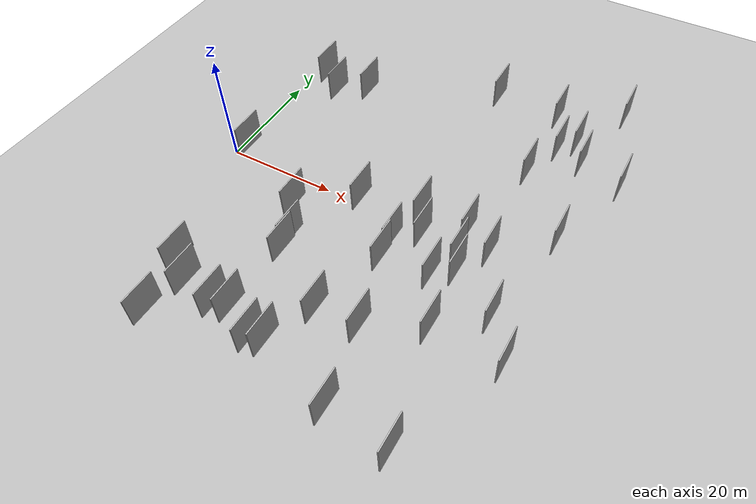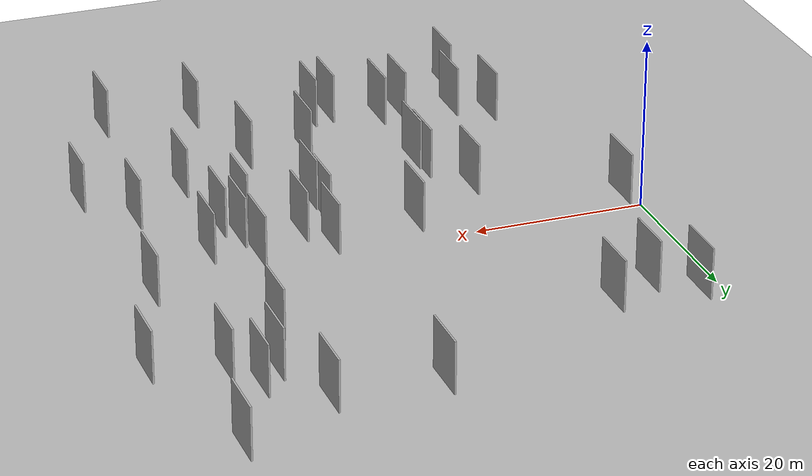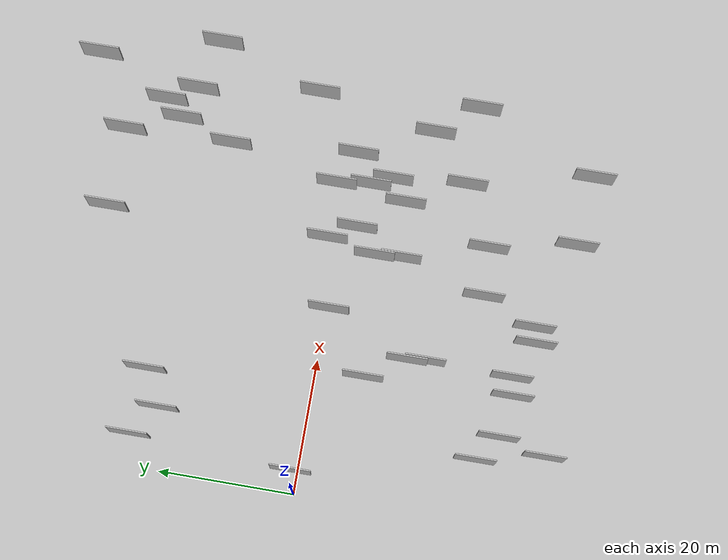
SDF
<?xml version="1.0" encoding="utf-8"?>

<sdf version="1.6">

   <world name="default">

      <gui fullscreen="0">

         <camera name="user_camera">

            <pose>-15 0 4.57585 0 0 0</pose>

            <view_controller>orbit</view_controller>

         </camera>

      </gui>

      <scene>

         <sky>

           <clouds>

             <speed>12</speed>

           </clouds>

         </sky>

         <ambient>0.4 0.4 0.4 1</ambient>

         <background>0.7 0.7 0.7 1</background>

         <shadows>1</shadows>

      </scene>

      <gravity>0 0 -9.8066</gravity>

      <magnetic_field>6e-06 2.3e-05 -4.2e-05</magnetic_field>

      <physics default="0" name="default_physics" type="ode">

         <ode>

            <solver>

               <type>quick</type>

               <iters>10</iters>

               <sor>1.0</sor>

               <use_dynamic_moi_rescaling>0</use_dynamic_moi_rescaling>

            </solver>

            <constraints>

               <cfm>0</cfm>

               <erp>0.2</erp>

               <contact_max_correcting_vel>100</contact_max_correcting_vel>

               <contact_surface_layer>0.001</contact_surface_layer>

            </constraints>

         </ode>

         <max_step_size>0.004</max_step_size>

         <real_time_factor>1</real_time_factor>

         <real_time_update_rate>250</real_time_update_rate>

      </physics>

      <light name="sun" type="directional">

         <cast_shadows>1</cast_shadows>

         <pose>0 0 10 0 0 0</pose>

         <diffuse>0.8 0.8 0.8 1</diffuse>

         <specular>0.2 0.2 0.2 1</specular>

         <attenuation>

            <range>1000</range>

            <constant>0.9</constant>

            <linear>0.01</linear>

            <quadratic>0.001</quadratic>

         </attenuation>

         <direction>-0.5 0.1 -0.9</direction>

      </light>

      <include>

         <name>ground_plane_1</name>

         <uri>model://HANNAS_ground_plane</uri>

         <pose>0 0 0  0 0 0</pose>

      </include>

      <include>

         <name>ground_plane_2</name>

         <uri>model://HANNAS_ground_plane</uri>

         <pose>100 0 0  0 0 0</pose>

      </include>

      <model name="HANNAS_wall_1">

         <static>1</static>

         <pose frame="">51.9781 25.9054 2.5 0.000000 0.000000 1.570796</pose>

         <link name="link">

            <pose frame="">0 0 3.00 0 0 0</pose>

            <collision name="collision">

               <geometry>

                  <box>

                     <size>6.00 0.2 6.00</size>

                  </box>

               </geometry>

               <max_contacts>10</max_contacts>

               <surface>

                  <contact>

                     <ode/>

                  </contact>

                  <bounce/>

                  <friction>

                     <torsional>

                        <ode/>

                     </torsional>

                     <ode/>

                  </friction>

               </surface>

            </collision>

            <visual name="visual">

               <cast_shadows>0</cast_shadows>

               <geometry>

                  <box>

                     <size>6.00 0.2 6.00</size>

                  </box>

               </geometry>

               <material>

                  <script>

                     <uri>model://HANNAS_wall/materials/scripts</uri>

                     <uri>model://HANNAS_wall/materials/textures</uri>

                     <name>vrc/HANNAS_wall</name>

                  </script>

               </material>

            </visual>

            <self_collide>0</self_collide>

            <enable_wind>0</enable_wind>

            <kinematic>0</kinematic>

         </link>

      </model>

      <model name="HANNAS_wall_2">

         <static>1</static>

         <pose frame="">56.0913 -11.6065 2.5 0.000000 0.000000 1.570796</pose>

         <link name="link">

            <pose frame="">0 0 3.00 0 0 0</pose>

            <collision name="collision">

               <geometry>

                  <box>

                     <size>6.00 0.2 6.00</size>

                  </box>

               </geometry>

               <max_contacts>10</max_contacts>

               <surface>

                  <contact>

                     <ode/>

                  </contact>

                  <bounce/>

                  <friction>

                     <torsional>

                        <ode/>

                     </torsional>

                     <ode/>

                  </friction>

               </surface>

            </collision>

            <visual name="visual">

               <cast_shadows>0</cast_shadows>

               <geometry>

                  <box>

                     <size>6.00 0.2 6.00</size>

                  </box>

               </geometry>

               <material>

                  <script>

                     <uri>model://HANNAS_wall/materials/scripts</uri>

                     <uri>model://HANNAS_wall/materials/textures</uri>

                     <name>vrc/HANNAS_wall</name>

                  </script>

               </material>

            </visual>

            <self_collide>0</self_collide>

            <enable_wind>0</enable_wind>

            <kinematic>0</kinematic>

         </link>

      </model>

      <model name="HANNAS_wall_3">

         <static>1</static>

         <pose frame="">12.7537 -27.6834 2.5 0.000000 0.000000 1.570796</pose>

         <link name="link">

            <pose frame="">0 0 3.00 0 0 0</pose>

            <collision name="collision">

               <geometry>

                  <box>

                     <size>6.00 0.2 6.00</size>

                  </box>

               </geometry>

               <max_contacts>10</max_contacts>

               <surface>

                  <contact>

                     <ode/>

                  </contact>

                  <bounce/>

                  <friction>

                     <torsional>

                        <ode/>

                     </torsional>

                     <ode/>

                  </friction>

               </surface>

            </collision>

            <visual name="visual">

               <cast_shadows>0</cast_shadows>

               <geometry>

                  <box>

                     <size>6.00 0.2 6.00</size>

                  </box>

               </geometry>

               <material>

                  <script>

                     <uri>model://HANNAS_wall/materials/scripts</uri>

                     <uri>model://HANNAS_wall/materials/textures</uri>

                     <name>vrc/HANNAS_wall</name>

                  </script>

               </material>

            </visual>

            <self_collide>0</self_collide>

            <enable_wind>0</enable_wind>

            <kinematic>0</kinematic>

         </link>

      </model>

      <model name="HANNAS_wall_4">

         <static>1</static>

         <pose frame="">27.2120 -0.4861 2.5 0.000000 0.000000 1.570796</pose>

         <link name="link">

            <pose frame="">0 0 3.00 0 0 0</pose>

            <collision name="collision">

               <geometry>

                  <box>

                     <size>6.00 0.2 6.00</size>

                  </box>

               </geometry>

               <max_contacts>10</max_contacts>

               <surface>

                  <contact>

                     <ode/>

                  </contact>

                  <bounce/>

                  <friction>

                     <torsional>

                        <ode/>

                     </torsional>

                     <ode/>

                  </friction>

               </surface>

            </collision>

            <visual name="visual">

               <cast_shadows>0</cast_shadows>

               <geometry>

                  <box>

                     <size>6.00 0.2 6.00</size>

                  </box>

               </geometry>

               <material>

                  <script>

                     <uri>model://HANNAS_wall/materials/scripts</uri>

                     <uri>model://HANNAS_wall/materials/textures</uri>

                     <name>vrc/HANNAS_wall</name>

                  </script>

               </material>

            </visual>

            <self_collide>0</self_collide>

            <enable_wind>0</enable_wind>

            <kinematic>0</kinematic>

         </link>

      </model>

      <model name="HANNAS_wall_5">

         <static>1</static>

         <pose frame="">36.1838 -5.7018 2.5 0.000000 0.000000 1.570796</pose>

         <link name="link">

            <pose frame="">0 0 3.00 0 0 0</pose>

            <collision name="collision">

               <geometry>

                  <box>

                     <size>6.00 0.2 6.00</size>

                  </box>

               </geometry>

               <max_contacts>10</max_contacts>

               <surface>

                  <contact>

                     <ode/>

                  </contact>

                  <bounce/>

                  <friction>

                     <torsional>

                        <ode/>

                     </torsional>

                     <ode/>

                  </friction>

               </surface>

            </collision>

            <visual name="visual">

               <cast_shadows>0</cast_shadows>

               <geometry>

                  <box>

                     <size>6.00 0.2 6.00</size>

                  </box>

               </geometry>

               <material>

                  <script>

                     <uri>model://HANNAS_wall/materials/scripts</uri>

                     <uri>model://HANNAS_wall/materials/textures</uri>

                     <name>vrc/HANNAS_wall</name>

                  </script>

               </material>

            </visual>

            <self_collide>0</self_collide>

            <enable_wind>0</enable_wind>

            <kinematic>0</kinematic>

         </link>

      </model>

      <model name="HANNAS_wall_6">

         <static>1</static>

         <pose frame="">8.8174 21.3734 2.5 0.000000 0.000000 1.570796</pose>

         <link name="link">

            <pose frame="">0 0 3.00 0 0 0</pose>

            <collision name="collision">

               <geometry>

                  <box>

                     <size>6.00 0.2 6.00</size>

                  </box>

               </geometry>

               <max_contacts>10</max_contacts>

               <surface>

                  <contact>

                     <ode/>

                  </contact>

                  <bounce/>

                  <friction>

                     <torsional>

                        <ode/>

                     </torsional>

                     <ode/>

                  </friction>

               </surface>

            </collision>

            <visual name="visual">

               <cast_shadows>0</cast_shadows>

               <geometry>

                  <box>

                     <size>6.00 0.2 6.00</size>

                  </box>

               </geometry>

               <material>

                  <script>

                     <uri>model://HANNAS_wall/materials/scripts</uri>

                     <uri>model://HANNAS_wall/materials/textures</uri>

                     <name>vrc/HANNAS_wall</name>

                  </script>

               </material>

            </visual>

            <self_collide>0</self_collide>

            <enable_wind>0</enable_wind>

            <kinematic>0</kinematic>

         </link>

      </model>

      <model name="HANNAS_wall_7">

         <static>1</static>

         <pose frame="">36.9285 34.3431 2.5 0.000000 0.000000 1.570796</pose>

         <link name="link">

            <pose frame="">0 0 3.00 0 0 0</pose>

            <collision name="collision">

               <geometry>

                  <box>

                     <size>6.00 0.2 6.00</size>

                  </box>

               </geometry>

               <max_contacts>10</max_contacts>

               <surface>

                  <contact>

                     <ode/>

                  </contact>

                  <bounce/>

                  <friction>

                     <torsional>

                        <ode/>

                     </torsional>

                     <ode/>

                  </friction>

               </surface>

            </collision>

            <visual name="visual">

               <cast_shadows>0</cast_shadows>

               <geometry>

                  <box>

                     <size>6.00 0.2 6.00</size>

                  </box>

               </geometry>

               <material>

                  <script>

                     <uri>model://HANNAS_wall/materials/scripts</uri>

                     <uri>model://HANNAS_wall/materials/textures</uri>

                     <name>vrc/HANNAS_wall</name>

                  </script>

               </material>

            </visual>

            <self_collide>0</self_collide>

            <enable_wind>0</enable_wind>

            <kinematic>0</kinematic>

         </link>

      </model>

      <model name="HANNAS_wall_8">

         <static>1</static>

         <pose frame="">40.0391 -22.0690 2.5 0.000000 0.000000 1.570796</pose>

         <link name="link">

            <pose frame="">0 0 3.00 0 0 0</pose>

            <collision name="collision">

               <geometry>

                  <box>

                     <size>6.00 0.2 6.00</size>

                  </box>

               </geometry>

               <max_contacts>10</max_contacts>

               <surface>

                  <contact>

                     <ode/>

                  </contact>

                  <bounce/>

                  <friction>

                     <torsional>

                        <ode/>

                     </torsional>

                     <ode/>

                  </friction>

               </surface>

            </collision>

            <visual name="visual">

               <cast_shadows>0</cast_shadows>

               <geometry>

                  <box>

                     <size>6.00 0.2 6.00</size>

                  </box>

               </geometry>

               <material>

                  <script>

                     <uri>model://HANNAS_wall/materials/scripts</uri>

                     <uri>model://HANNAS_wall/materials/textures</uri>

                     <name>vrc/HANNAS_wall</name>

                  </script>

               </material>

            </visual>

            <self_collide>0</self_collide>

            <enable_wind>0</enable_wind>

            <kinematic>0</kinematic>

         </link>

      </model>

      <model name="HANNAS_wall_9">

         <static>1</static>

         <pose frame="">49.0383 -17.4662 2.5 0.000000 0.000000 1.570796</pose>

         <link name="link">

            <pose frame="">0 0 3.00 0 0 0</pose>

            <collision name="collision">

               <geometry>

                  <box>

                     <size>6.00 0.2 6.00</size>

                  </box>

               </geometry>

               <max_contacts>10</max_contacts>

               <surface>

                  <contact>

                     <ode/>

                  </contact>

                  <bounce/>

                  <friction>

                     <torsional>

                        <ode/>

                     </torsional>

                     <ode/>

                  </friction>

               </surface>

            </collision>

            <visual name="visual">

               <cast_shadows>0</cast_shadows>

               <geometry>

                  <box>

                     <size>6.00 0.2 6.00</size>

                  </box>

               </geometry>

               <material>

                  <script>

                     <uri>model://HANNAS_wall/materials/scripts</uri>

                     <uri>model://HANNAS_wall/materials/textures</uri>

                     <name>vrc/HANNAS_wall</name>

                  </script>

               </material>

            </visual>

            <self_collide>0</self_collide>

            <enable_wind>0</enable_wind>

            <kinematic>0</kinematic>

         </link>

      </model>

      <model name="HANNAS_wall_10">

         <static>1</static>

         <pose frame="">60.8531 -17.7685 2.5 0.000000 0.000000 1.570796</pose>

         <link name="link">

            <pose frame="">0 0 3.00 0 0 0</pose>

            <collision name="collision">

               <geometry>

                  <box>

                     <size>6.00 0.2 6.00</size>

                  </box>

               </geometry>

               <max_contacts>10</max_contacts>

               <surface>

                  <contact>

                     <ode/>

                  </contact>

                  <bounce/>

                  <friction>

                     <torsional>

                        <ode/>

                     </torsional>

                     <ode/>

                  </friction>

               </surface>

            </collision>

            <visual name="visual">

               <cast_shadows>0</cast_shadows>

               <geometry>

                  <box>

                     <size>6.00 0.2 6.00</size>

                  </box>

               </geometry>

               <material>

                  <script>

                     <uri>model://HANNAS_wall/materials/scripts</uri>

                     <uri>model://HANNAS_wall/materials/textures</uri>

                     <name>vrc/HANNAS_wall</name>

                  </script>

               </material>

            </visual>

            <self_collide>0</self_collide>

            <enable_wind>0</enable_wind>

            <kinematic>0</kinematic>

         </link>

      </model>

      <model name="HANNAS_wall_11">

         <static>1</static>

         <pose frame="">46.0210 1.5895 2.5 0.000000 0.000000 1.570796</pose>

         <link name="link">

            <pose frame="">0 0 3.00 0 0 0</pose>

            <collision name="collision">

               <geometry>

                  <box>

                     <size>6.00 0.2 6.00</size>

                  </box>

               </geometry>

               <max_contacts>10</max_contacts>

               <surface>

                  <contact>

                     <ode/>

                  </contact>

                  <bounce/>

                  <friction>

                     <torsional>

                        <ode/>

                     </torsional>

                     <ode/>

                  </friction>

               </surface>

            </collision>

            <visual name="visual">

               <cast_shadows>0</cast_shadows>

               <geometry>

                  <box>

                     <size>6.00 0.2 6.00</size>

                  </box>

               </geometry>

               <material>

                  <script>

                     <uri>model://HANNAS_wall/materials/scripts</uri>

                     <uri>model://HANNAS_wall/materials/textures</uri>

                     <name>vrc/HANNAS_wall</name>

                  </script>

               </material>

            </visual>

            <self_collide>0</self_collide>

            <enable_wind>0</enable_wind>

            <kinematic>0</kinematic>

         </link>

      </model>

      <model name="HANNAS_wall_12">

         <static>1</static>

         <pose frame="">50.9565 -0.8610 2.5 0.000000 0.000000 1.570796</pose>

         <link name="link">

            <pose frame="">0 0 3.00 0 0 0</pose>

            <collision name="collision">

               <geometry>

                  <box>

                     <size>6.00 0.2 6.00</size>

                  </box>

               </geometry>

               <max_contacts>10</max_contacts>

               <surface>

                  <contact>

                     <ode/>

                  </contact>

                  <bounce/>

                  <friction>

                     <torsional>

                        <ode/>

                     </torsional>

                     <ode/>

                  </friction>

               </surface>

            </collision>

            <visual name="visual">

               <cast_shadows>0</cast_shadows>

               <geometry>

                  <box>

                     <size>6.00 0.2 6.00</size>

                  </box>

               </geometry>

               <material>

                  <script>

                     <uri>model://HANNAS_wall/materials/scripts</uri>

                     <uri>model://HANNAS_wall/materials/textures</uri>

                     <name>vrc/HANNAS_wall</name>

                  </script>

               </material>

            </visual>

            <self_collide>0</self_collide>

            <enable_wind>0</enable_wind>

            <kinematic>0</kinematic>

         </link>

      </model>

      <model name="HANNAS_wall_13">

         <static>1</static>

         <pose frame="">18.1376 -7.0497 2.5 0.000000 0.000000 1.570796</pose>

         <link name="link">

            <pose frame="">0 0 3.00 0 0 0</pose>

            <collision name="collision">

               <geometry>

                  <box>

                     <size>6.00 0.2 6.00</size>

                  </box>

               </geometry>

               <max_contacts>10</max_contacts>

               <surface>

                  <contact>

                     <ode/>

                  </contact>

                  <bounce/>

                  <friction>

                     <torsional>

                        <ode/>

                     </torsional>

                     <ode/>

                  </friction>

               </surface>

            </collision>

            <visual name="visual">

               <cast_shadows>0</cast_shadows>

               <geometry>

                  <box>

                     <size>6.00 0.2 6.00</size>

                  </box>

               </geometry>

               <material>

                  <script>

                     <uri>model://HANNAS_wall/materials/scripts</uri>

                     <uri>model://HANNAS_wall/materials/textures</uri>

                     <name>vrc/HANNAS_wall</name>

                  </script>

               </material>

            </visual>

            <self_collide>0</self_collide>

            <enable_wind>0</enable_wind>

            <kinematic>0</kinematic>

         </link>

      </model>

      <model name="HANNAS_wall_14">

         <static>1</static>

         <pose frame="">21.6656 -12.9309 2.5 0.000000 0.000000 1.570796</pose>

         <link name="link">

            <pose frame="">0 0 3.00 0 0 0</pose>

            <collision name="collision">

               <geometry>

                  <box>

                     <size>6.00 0.2 6.00</size>

                  </box>

               </geometry>

               <max_contacts>10</max_contacts>

               <surface>

                  <contact>

                     <ode/>

                  </contact>

                  <bounce/>

                  <friction>

                     <torsional>

                        <ode/>

                     </torsional>

                     <ode/>

                  </friction>

               </surface>

            </collision>

            <visual name="visual">

               <cast_shadows>0</cast_shadows>

               <geometry>

                  <box>

                     <size>6.00 0.2 6.00</size>

                  </box>

               </geometry>

               <material>

                  <script>

                     <uri>model://HANNAS_wall/materials/scripts</uri>

                     <uri>model://HANNAS_wall/materials/textures</uri>

                     <name>vrc/HANNAS_wall</name>

                  </script>

               </material>

            </visual>

            <self_collide>0</self_collide>

            <enable_wind>0</enable_wind>

            <kinematic>0</kinematic>

         </link>

      </model>

      <model name="HANNAS_wall_15">

         <static>1</static>

         <pose frame="">49.3695 18.0030 2.5 0.000000 0.000000 1.570796</pose>

         <link name="link">

            <pose frame="">0 0 3.00 0 0 0</pose>

            <collision name="collision">

               <geometry>

                  <box>

                     <size>6.00 0.2 6.00</size>

                  </box>

               </geometry>

               <max_contacts>10</max_contacts>

               <surface>

                  <contact>

                     <ode/>

                  </contact>

                  <bounce/>

                  <friction>

                     <torsional>

                        <ode/>

                     </torsional>

                     <ode/>

                  </friction>

               </surface>

            </collision>

            <visual name="visual">

               <cast_shadows>0</cast_shadows>

               <geometry>

                  <box>

                     <size>6.00 0.2 6.00</size>

                  </box>

               </geometry>

               <material>

                  <script>

                     <uri>model://HANNAS_wall/materials/scripts</uri>

                     <uri>model://HANNAS_wall/materials/textures</uri>

                     <name>vrc/HANNAS_wall</name>

                  </script>

               </material>

            </visual>

            <self_collide>0</self_collide>

            <enable_wind>0</enable_wind>

            <kinematic>0</kinematic>

         </link>

      </model>

      <model name="HANNAS_wall_16">

         <static>1</static>

         <pose frame="">42.5664 -34.7586 2.5 0.000000 0.000000 1.570796</pose>

         <link name="link">

            <pose frame="">0 0 3.00 0 0 0</pose>

            <collision name="collision">

               <geometry>

                  <box>

                     <size>6.00 0.2 6.00</size>

                  </box>

               </geometry>

               <max_contacts>10</max_contacts>

               <surface>

                  <contact>

                     <ode/>

                  </contact>

                  <bounce/>

                  <friction>

                     <torsional>

                        <ode/>

                     </torsional>

                     <ode/>

                  </friction>

               </surface>

            </collision>

            <visual name="visual">

               <cast_shadows>0</cast_shadows>

               <geometry>

                  <box>

                     <size>6.00 0.2 6.00</size>

                  </box>

               </geometry>

               <material>

                  <script>

                     <uri>model://HANNAS_wall/materials/scripts</uri>

                     <uri>model://HANNAS_wall/materials/textures</uri>

                     <name>vrc/HANNAS_wall</name>

                  </script>

               </material>

            </visual>

            <self_collide>0</self_collide>

            <enable_wind>0</enable_wind>

            <kinematic>0</kinematic>

         </link>

      </model>

      <model name="HANNAS_wall_17">

         <static>1</static>

         <pose frame="">18.9485 -28.7986 2.5 0.000000 0.000000 1.570796</pose>

         <link name="link">

            <pose frame="">0 0 3.00 0 0 0</pose>

            <collision name="collision">

               <geometry>

                  <box>

                     <size>6.00 0.2 6.00</size>

                  </box>

               </geometry>

               <max_contacts>10</max_contacts>

               <surface>

                  <contact>

                     <ode/>

                  </contact>

                  <bounce/>

                  <friction>

                     <torsional>

                        <ode/>

                     </torsional>

                     <ode/>

                  </friction>

               </surface>

            </collision>

            <visual name="visual">

               <cast_shadows>0</cast_shadows>

               <geometry>

                  <box>

                     <size>6.00 0.2 6.00</size>

                  </box>

               </geometry>

               <material>

                  <script>

                     <uri>model://HANNAS_wall/materials/scripts</uri>

                     <uri>model://HANNAS_wall/materials/textures</uri>

                     <name>vrc/HANNAS_wall</name>

                  </script>

               </material>

            </visual>

            <self_collide>0</self_collide>

            <enable_wind>0</enable_wind>

            <kinematic>0</kinematic>

         </link>

      </model>

      <model name="HANNAS_wall_18">

         <static>1</static>

         <pose frame="">56.8432 24.3454 2.5 0.000000 0.000000 1.570796</pose>

         <link name="link">

            <pose frame="">0 0 3.00 0 0 0</pose>

            <collision name="collision">

               <geometry>

                  <box>

                     <size>6.00 0.2 6.00</size>

                  </box>

               </geometry>

               <max_contacts>10</max_contacts>

               <surface>

                  <contact>

                     <ode/>

                  </contact>

                  <bounce/>

                  <friction>

                     <torsional>

                        <ode/>

                     </torsional>

                     <ode/>

                  </friction>

               </surface>

            </collision>

            <visual name="visual">

               <cast_shadows>0</cast_shadows>

               <geometry>

                  <box>

                     <size>6.00 0.2 6.00</size>

                  </box>

               </geometry>

               <material>

                  <script>

                     <uri>model://HANNAS_wall/materials/scripts</uri>

                     <uri>model://HANNAS_wall/materials/textures</uri>

                     <name>vrc/HANNAS_wall</name>

                  </script>

               </material>

            </visual>

            <self_collide>0</self_collide>

            <enable_wind>0</enable_wind>

            <kinematic>0</kinematic>

         </link>

      </model>

      <model name="HANNAS_wall_19">

         <static>1</static>

         <pose frame="">47.9826 -6.5462 2.5 0.000000 0.000000 1.570796</pose>

         <link name="link">

            <pose frame="">0 0 3.00 0 0 0</pose>

            <collision name="collision">

               <geometry>

                  <box>

                     <size>6.00 0.2 6.00</size>

                  </box>

               </geometry>

               <max_contacts>10</max_contacts>

               <surface>

                  <contact>

                     <ode/>

                  </contact>

                  <bounce/>

                  <friction>

                     <torsional>

                        <ode/>

                     </torsional>

                     <ode/>

                  </friction>

               </surface>

            </collision>

            <visual name="visual">

               <cast_shadows>0</cast_shadows>

               <geometry>

                  <box>

                     <size>6.00 0.2 6.00</size>

                  </box>

               </geometry>

               <material>

                  <script>

                     <uri>model://HANNAS_wall/materials/scripts</uri>

                     <uri>model://HANNAS_wall/materials/textures</uri>

                     <name>vrc/HANNAS_wall</name>

                  </script>

               </material>

            </visual>

            <self_collide>0</self_collide>

            <enable_wind>0</enable_wind>

            <kinematic>0</kinematic>

         </link>

      </model>

      <model name="HANNAS_wall_20">

         <static>1</static>

         <pose frame="">27.1281 -30.9101 2.5 0.000000 0.000000 1.570796</pose>

         <link name="link">

            <pose frame="">0 0 3.00 0 0 0</pose>

            <collision name="collision">

               <geometry>

                  <box>

                     <size>6.00 0.2 6.00</size>

                  </box>

               </geometry>

               <max_contacts>10</max_contacts>

               <surface>

                  <contact>

                     <ode/>

                  </contact>

                  <bounce/>

                  <friction>

                     <torsional>

                        <ode/>

                     </torsional>

                     <ode/>

                  </friction>

               </surface>

            </collision>

            <visual name="visual">

               <cast_shadows>0</cast_shadows>

               <geometry>

                  <box>

                     <size>6.00 0.2 6.00</size>

                  </box>

               </geometry>

               <material>

                  <script>

                     <uri>model://HANNAS_wall/materials/scripts</uri>

                     <uri>model://HANNAS_wall/materials/textures</uri>

                     <name>vrc/HANNAS_wall</name>

                  </script>

               </material>

            </visual>

            <self_collide>0</self_collide>

            <enable_wind>0</enable_wind>

            <kinematic>0</kinematic>

         </link>

      </model>

      <model name="HANNAS_wall_21">

         <static>1</static>

         <pose frame="">8.9676 -24.8882 2.5 0.000000 0.000000 1.570796</pose>

         <link name="link">

            <pose frame="">0 0 3.00 0 0 0</pose>

            <collision name="collision">

               <geometry>

                  <box>

                     <size>6.00 0.2 6.00</size>

                  </box>

               </geometry>

               <max_contacts>10</max_contacts>

               <surface>

                  <contact>

                     <ode/>

                  </contact>

                  <bounce/>

                  <friction>

                     <torsional>

                        <ode/>

                     </torsional>

                     <ode/>

                  </friction>

               </surface>

            </collision>

            <visual name="visual">

               <cast_shadows>0</cast_shadows>

               <geometry>

                  <box>

                     <size>6.00 0.2 6.00</size>

                  </box>

               </geometry>

               <material>

                  <script>

                     <uri>model://HANNAS_wall/materials/scripts</uri>

                     <uri>model://HANNAS_wall/materials/textures</uri>

                     <name>vrc/HANNAS_wall</name>

                  </script>

               </material>

            </visual>

            <self_collide>0</self_collide>

            <enable_wind>0</enable_wind>

            <kinematic>0</kinematic>

         </link>

      </model>

      <model name="HANNAS_wall_22">

         <static>1</static>

         <pose frame="">64.5360 22.0101 2.5 0.000000 0.000000 1.570796</pose>

         <link name="link">

            <pose frame="">0 0 3.00 0 0 0</pose>

            <collision name="collision">

               <geometry>

                  <box>

                     <size>6.00 0.2 6.00</size>

                  </box>

               </geometry>

               <max_contacts>10</max_contacts>

               <surface>

                  <contact>

                     <ode/>

                  </contact>

                  <bounce/>

                  <friction>

                     <torsional>

                        <ode/>

                     </torsional>

                     <ode/>

                  </friction>

               </surface>

            </collision>

            <visual name="visual">

               <cast_shadows>0</cast_shadows>

               <geometry>

                  <box>

                     <size>6.00 0.2 6.00</size>

                  </box>

               </geometry>

               <material>

                  <script>

                     <uri>model://HANNAS_wall/materials/scripts</uri>

                     <uri>model://HANNAS_wall/materials/textures</uri>

                     <name>vrc/HANNAS_wall</name>

                  </script>

               </material>

            </visual>

            <self_collide>0</self_collide>

            <enable_wind>0</enable_wind>

            <kinematic>0</kinematic>

         </link>

      </model>

      <model name="HANNAS_wall_23">

         <static>1</static>

         <pose frame="">59.8743 39.7176 2.5 0.000000 0.000000 1.570796</pose>

         <link name="link">

            <pose frame="">0 0 3.00 0 0 0</pose>

            <collision name="collision">

               <geometry>

                  <box>

                     <size>6.00 0.2 6.00</size>

                  </box>

               </geometry>

               <max_contacts>10</max_contacts>

               <surface>

                  <contact>

                     <ode/>

                  </contact>

                  <bounce/>

                  <friction>

                     <torsional>

                        <ode/>

                     </torsional>

                     <ode/>

                  </friction>

               </surface>

            </collision>

            <visual name="visual">

               <cast_shadows>0</cast_shadows>

               <geometry>

                  <box>

                     <size>6.00 0.2 6.00</size>

                  </box>

               </geometry>

               <material>

                  <script>

                     <uri>model://HANNAS_wall/materials/scripts</uri>

                     <uri>model://HANNAS_wall/materials/textures</uri>

                     <name>vrc/HANNAS_wall</name>

                  </script>

               </material>

            </visual>

            <self_collide>0</self_collide>

            <enable_wind>0</enable_wind>

            <kinematic>0</kinematic>

         </link>

      </model>

      <model name="HANNAS_wall_24">

         <static>1</static>

         <pose frame="">53.1511 -35.8574 2.5 0.000000 0.000000 1.570796</pose>

         <link name="link">

            <pose frame="">0 0 3.00 0 0 0</pose>

            <collision name="collision">

               <geometry>

                  <box>

                     <size>6.00 0.2 6.00</size>

                  </box>

               </geometry>

               <max_contacts>10</max_contacts>

               <surface>

                  <contact>

                     <ode/>

                  </contact>

                  <bounce/>

                  <friction>

                     <torsional>

                        <ode/>

                     </torsional>

                     <ode/>

                  </friction>

               </surface>

            </collision>

            <visual name="visual">

               <cast_shadows>0</cast_shadows>

               <geometry>

                  <box>

                     <size>6.00 0.2 6.00</size>

                  </box>

               </geometry>

               <material>

                  <script>

                     <uri>model://HANNAS_wall/materials/scripts</uri>

                     <uri>model://HANNAS_wall/materials/textures</uri>

                     <name>vrc/HANNAS_wall</name>

                  </script>

               </material>

            </visual>

            <self_collide>0</self_collide>

            <enable_wind>0</enable_wind>

            <kinematic>0</kinematic>

         </link>

      </model>

      <model name="HANNAS_wall_25">

         <static>1</static>

         <pose frame="">4.3722 24.7497 2.5 0.000000 0.000000 1.570796</pose>

         <link name="link">

            <pose frame="">0 0 3.00 0 0 0</pose>

            <collision name="collision">

               <geometry>

                  <box>

                     <size>6.00 0.2 6.00</size>

                  </box>

               </geometry>

               <max_contacts>10</max_contacts>

               <surface>

                  <contact>

                     <ode/>

                  </contact>

                  <bounce/>

                  <friction>

                     <torsional>

                        <ode/>

                     </torsional>

                     <ode/>

                  </friction>

               </surface>

            </collision>

            <visual name="visual">

               <cast_shadows>0</cast_shadows>

               <geometry>

                  <box>

                     <size>6.00 0.2 6.00</size>

                  </box>

               </geometry>

               <material>

                  <script>

                     <uri>model://HANNAS_wall/materials/scripts</uri>

                     <uri>model://HANNAS_wall/materials/textures</uri>

                     <name>vrc/HANNAS_wall</name>

                  </script>

               </material>

            </visual>

            <self_collide>0</self_collide>

            <enable_wind>0</enable_wind>

            <kinematic>0</kinematic>

         </link>

      </model>

      <model name="HANNAS_wall_26">

         <static>1</static>

         <pose frame="">48.9256 33.8816 2.5 0.000000 0.000000 1.570796</pose>

         <link name="link">

            <pose frame="">0 0 3.00 0 0 0</pose>

            <collision name="collision">

               <geometry>

                  <box>

                     <size>6.00 0.2 6.00</size>

                  </box>

               </geometry>

               <max_contacts>10</max_contacts>

               <surface>

                  <contact>

                     <ode/>

                  </contact>

                  <bounce/>

                  <friction>

                     <torsional>

                        <ode/>

                     </torsional>

                     <ode/>

                  </friction>

               </surface>

            </collision>

            <visual name="visual">

               <cast_shadows>0</cast_shadows>

               <geometry>

                  <box>

                     <size>6.00 0.2 6.00</size>

                  </box>

               </geometry>

               <material>

                  <script>

                     <uri>model://HANNAS_wall/materials/scripts</uri>

                     <uri>model://HANNAS_wall/materials/textures</uri>

                     <name>vrc/HANNAS_wall</name>

                  </script>

               </material>

            </visual>

            <self_collide>0</self_collide>

            <enable_wind>0</enable_wind>

            <kinematic>0</kinematic>

         </link>

      </model>

      <model name="HANNAS_wall_27">

         <static>1</static>

         <pose frame="">59.3727 6.3657 2.5 0.000000 0.000000 1.570796</pose>

         <link name="link">

            <pose frame="">0 0 3.00 0 0 0</pose>

            <collision name="collision">

               <geometry>

                  <box>

                     <size>6.00 0.2 6.00</size>

                  </box>

               </geometry>

               <max_contacts>10</max_contacts>

               <surface>

                  <contact>

                     <ode/>

                  </contact>

                  <bounce/>

                  <friction>

                     <torsional>

                        <ode/>

                     </torsional>

                     <ode/>

                  </friction>

               </surface>

            </collision>

            <visual name="visual">

               <cast_shadows>0</cast_shadows>

               <geometry>

                  <box>

                     <size>6.00 0.2 6.00</size>

                  </box>

               </geometry>

               <material>

                  <script>

                     <uri>model://HANNAS_wall/materials/scripts</uri>

                     <uri>model://HANNAS_wall/materials/textures</uri>

                     <name>vrc/HANNAS_wall</name>

                  </script>

               </material>

            </visual>

            <self_collide>0</self_collide>

            <enable_wind>0</enable_wind>

            <kinematic>0</kinematic>

         </link>

      </model>

      <model name="HANNAS_wall_28">

         <static>1</static>

         <pose frame="">54.4715 28.6567 2.5 0.000000 0.000000 1.570796</pose>

         <link name="link">

            <pose frame="">0 0 3.00 0 0 0</pose>

            <collision name="collision">

               <geometry>

                  <box>

                     <size>6.00 0.2 6.00</size>

                  </box>

               </geometry>

               <max_contacts>10</max_contacts>

               <surface>

                  <contact>

                     <ode/>

                  </contact>

                  <bounce/>

                  <friction>

                     <torsional>

                        <ode/>

                     </torsional>

                     <ode/>

                  </friction>

               </surface>

            </collision>

            <visual name="visual">

               <cast_shadows>0</cast_shadows>

               <geometry>

                  <box>

                     <size>6.00 0.2 6.00</size>

                  </box>

               </geometry>

               <material>

                  <script>

                     <uri>model://HANNAS_wall/materials/scripts</uri>

                     <uri>model://HANNAS_wall/materials/textures</uri>

                     <name>vrc/HANNAS_wall</name>

                  </script>

               </material>

            </visual>

            <self_collide>0</self_collide>

            <enable_wind>0</enable_wind>

            <kinematic>0</kinematic>

         </link>

      </model>

      <model name="HANNAS_wall_29">

         <static>1</static>

         <pose frame="">29.4335 -30.4135 2.5 0.000000 0.000000 1.570796</pose>

         <link name="link">

            <pose frame="">0 0 3.00 0 0 0</pose>

            <collision name="collision">

               <geometry>

                  <box>

                     <size>6.00 0.2 6.00</size>

                  </box>

               </geometry>

               <max_contacts>10</max_contacts>

               <surface>

                  <contact>

                     <ode/>

                  </contact>

                  <bounce/>

                  <friction>

                     <torsional>

                        <ode/>

                     </torsional>

                     <ode/>

                  </friction>

               </surface>

            </collision>

            <visual name="visual">

               <cast_shadows>0</cast_shadows>

               <geometry>

                  <box>

                     <size>6.00 0.2 6.00</size>

                  </box>

               </geometry>

               <material>

                  <script>

                     <uri>model://HANNAS_wall/materials/scripts</uri>

                     <uri>model://HANNAS_wall/materials/textures</uri>

                     <name>vrc/HANNAS_wall</name>

                  </script>

               </material>

            </visual>

            <self_collide>0</self_collide>

            <enable_wind>0</enable_wind>

            <kinematic>0</kinematic>

         </link>

      </model>

      <model name="HANNAS_wall_30">

         <static>1</static>

         <pose frame="">32.7660 -22.4336 2.5 0.000000 0.000000 1.570796</pose>

         <link name="link">

            <pose frame="">0 0 3.00 0 0 0</pose>

            <collision name="collision">

               <geometry>

                  <box>

                     <size>6.00 0.2 6.00</size>

                  </box>

               </geometry>

               <max_contacts>10</max_contacts>

               <surface>

                  <contact>

                     <ode/>

                  </contact>

                  <bounce/>

                  <friction>

                     <torsional>

                        <ode/>

                     </torsional>

                     <ode/>

                  </friction>

               </surface>

            </collision>

            <visual name="visual">

               <cast_shadows>0</cast_shadows>

               <geometry>

                  <box>

                     <size>6.00 0.2 6.00</size>

                  </box>

               </geometry>

               <material>

                  <script>

                     <uri>model://HANNAS_wall/materials/scripts</uri>

                     <uri>model://HANNAS_wall/materials/textures</uri>

                     <name>vrc/HANNAS_wall</name>

                  </script>

               </material>

            </visual>

            <self_collide>0</self_collide>

            <enable_wind>0</enable_wind>

            <kinematic>0</kinematic>

         </link>

      </model>

      <model name="HANNAS_wall_31">

         <static>1</static>

         <pose frame="">11.0332 -34.5940 2.5 0.000000 0.000000 1.570796</pose>

         <link name="link">

            <pose frame="">0 0 3.00 0 0 0</pose>

            <collision name="collision">

               <geometry>

                  <box>

                     <size>6.00 0.2 6.00</size>

                  </box>

               </geometry>

               <max_contacts>10</max_contacts>

               <surface>

                  <contact>

                     <ode/>

                  </contact>

                  <bounce/>

                  <friction>

                     <torsional>

                        <ode/>

                     </torsional>

                     <ode/>

                  </friction>

               </surface>

            </collision>

            <visual name="visual">

               <cast_shadows>0</cast_shadows>

               <geometry>

                  <box>

                     <size>6.00 0.2 6.00</size>

                  </box>

               </geometry>

               <material>

                  <script>

                     <uri>model://HANNAS_wall/materials/scripts</uri>

                     <uri>model://HANNAS_wall/materials/textures</uri>

                     <name>vrc/HANNAS_wall</name>

                  </script>

               </material>

            </visual>

            <self_collide>0</self_collide>

            <enable_wind>0</enable_wind>

            <kinematic>0</kinematic>

         </link>

      </model>

      <model name="HANNAS_wall_32">

         <static>1</static>

         <pose frame="">36.4135 -9.6289 2.5 0.000000 0.000000 1.570796</pose>

         <link name="link">

            <pose frame="">0 0 3.00 0 0 0</pose>

            <collision name="collision">

               <geometry>

                  <box>

                     <size>6.00 0.2 6.00</size>

                  </box>

               </geometry>

               <max_contacts>10</max_contacts>

               <surface>

                  <contact>

                     <ode/>

                  </contact>

                  <bounce/>

                  <friction>

                     <torsional>

                        <ode/>

                     </torsional>

                     <ode/>

                  </friction>

               </surface>

            </collision>

            <visual name="visual">

               <cast_shadows>0</cast_shadows>

               <geometry>

                  <box>

                     <size>6.00 0.2 6.00</size>

                  </box>

               </geometry>

               <material>

                  <script>

                     <uri>model://HANNAS_wall/materials/scripts</uri>

                     <uri>model://HANNAS_wall/materials/textures</uri>

                     <name>vrc/HANNAS_wall</name>

                  </script>

               </material>

            </visual>

            <self_collide>0</self_collide>

            <enable_wind>0</enable_wind>

            <kinematic>0</kinematic>

         </link>

      </model>

      <model name="HANNAS_wall_33">

         <static>1</static>

         <pose frame="">14.0999 24.1783 2.5 0.000000 0.000000 1.570796</pose>

         <link name="link">

            <pose frame="">0 0 3.00 0 0 0</pose>

            <collision name="collision">

               <geometry>

                  <box>

                     <size>6.00 0.2 6.00</size>

                  </box>

               </geometry>

               <max_contacts>10</max_contacts>

               <surface>

                  <contact>

                     <ode/>

                  </contact>

                  <bounce/>

                  <friction>

                     <torsional>

                        <ode/>

                     </torsional>

                     <ode/>

                  </friction>

               </surface>

            </collision>

            <visual name="visual">

               <cast_shadows>0</cast_shadows>

               <geometry>

                  <box>

                     <size>6.00 0.2 6.00</size>

                  </box>

               </geometry>

               <material>

                  <script>

                     <uri>model://HANNAS_wall/materials/scripts</uri>

                     <uri>model://HANNAS_wall/materials/textures</uri>

                     <name>vrc/HANNAS_wall</name>

                  </script>

               </material>

            </visual>

            <self_collide>0</self_collide>

            <enable_wind>0</enable_wind>

            <kinematic>0</kinematic>

         </link>

      </model>

      <model name="HANNAS_wall_34">

         <static>1</static>

         <pose frame="">3.0726 0.9121 2.5 0.000000 0.000000 1.570796</pose>

         <link name="link">

            <pose frame="">0 0 3.00 0 0 0</pose>

            <collision name="collision">

               <geometry>

                  <box>

                     <size>6.00 0.2 6.00</size>

                  </box>

               </geometry>

               <max_contacts>10</max_contacts>

               <surface>

                  <contact>

                     <ode/>

                  </contact>

                  <bounce/>

                  <friction>

                     <torsional>

                        <ode/>

                     </torsional>

                     <ode/>

                  </friction>

               </surface>

            </collision>

            <visual name="visual">

               <cast_shadows>0</cast_shadows>

               <geometry>

                  <box>

                     <size>6.00 0.2 6.00</size>

                  </box>

               </geometry>

               <material>

                  <script>

                     <uri>model://HANNAS_wall/materials/scripts</uri>

                     <uri>model://HANNAS_wall/materials/textures</uri>

                     <name>vrc/HANNAS_wall</name>

                  </script>

               </material>

            </visual>

            <self_collide>0</self_collide>

            <enable_wind>0</enable_wind>

            <kinematic>0</kinematic>

         </link>

      </model>

      <model name="HANNAS_wall_35">

         <static>1</static>

         <pose frame="">21.9446 -15.5399 2.5 0.000000 0.000000 1.570796</pose>

         <link name="link">

            <pose frame="">0 0 3.00 0 0 0</pose>

            <collision name="collision">

               <geometry>

                  <box>

                     <size>6.00 0.2 6.00</size>

                  </box>

               </geometry>

               <max_contacts>10</max_contacts>

               <surface>

                  <contact>

                     <ode/>

                  </contact>

                  <bounce/>

                  <friction>

                     <torsional>

                        <ode/>

                     </torsional>

                     <ode/>

                  </friction>

               </surface>

            </collision>

            <visual name="visual">

               <cast_shadows>0</cast_shadows>

               <geometry>

                  <box>

                     <size>6.00 0.2 6.00</size>

                  </box>

               </geometry>

               <material>

                  <script>

                     <uri>model://HANNAS_wall/materials/scripts</uri>

                     <uri>model://HANNAS_wall/materials/textures</uri>

                     <name>vrc/HANNAS_wall</name>

                  </script>

               </material>

            </visual>

            <self_collide>0</self_collide>

            <enable_wind>0</enable_wind>

            <kinematic>0</kinematic>

         </link>

      </model>

      <model name="HANNAS_wall_36">

         <static>1</static>

         <pose frame="">46.6433 -3.4458 2.5 0.000000 0.000000 1.570796</pose>

         <link name="link">

            <pose frame="">0 0 3.00 0 0 0</pose>

            <collision name="collision">

               <geometry>

                  <box>

                     <size>6.00 0.2 6.00</size>

                  </box>

               </geometry>

               <max_contacts>10</max_contacts>

               <surface>

                  <contact>

                     <ode/>

                  </contact>

                  <bounce/>

                  <friction>

                     <torsional>

                        <ode/>

                     </torsional>

                     <ode/>

                  </friction>

               </surface>

            </collision>

            <visual name="visual">

               <cast_shadows>0</cast_shadows>

               <geometry>

                  <box>

                     <size>6.00 0.2 6.00</size>

                  </box>

               </geometry>

               <material>

                  <script>

                     <uri>model://HANNAS_wall/materials/scripts</uri>

                     <uri>model://HANNAS_wall/materials/textures</uri>

                     <name>vrc/HANNAS_wall</name>

                  </script>

               </material>

            </visual>

            <self_collide>0</self_collide>

            <enable_wind>0</enable_wind>

            <kinematic>0</kinematic>

         </link>

      </model>

      <model name="HANNAS_wall_37">

         <static>1</static>

         <pose frame="">44.7668 -8.9408 2.5 0.000000 0.000000 1.570796</pose>

         <link name="link">

            <pose frame="">0 0 3.00 0 0 0</pose>

            <collision name="collision">

               <geometry>

                  <box>

                     <size>6.00 0.2 6.00</size>

                  </box>

               </geometry>

               <max_contacts>10</max_contacts>

               <surface>

                  <contact>

                     <ode/>

                  </contact>

                  <bounce/>

                  <friction>

                     <torsional>

                        <ode/>

                     </torsional>

                     <ode/>

                  </friction>

               </surface>

            </collision>

            <visual name="visual">

               <cast_shadows>0</cast_shadows>

               <geometry>

                  <box>

                     <size>6.00 0.2 6.00</size>

                  </box>

               </geometry>

               <material>

                  <script>

                     <uri>model://HANNAS_wall/materials/scripts</uri>

                     <uri>model://HANNAS_wall/materials/textures</uri>

                     <name>vrc/HANNAS_wall</name>

                  </script>

               </material>

            </visual>

            <self_collide>0</self_collide>

            <enable_wind>0</enable_wind>

            <kinematic>0</kinematic>

         </link>

      </model>

      <model name="HANNAS_wall_38">

         <static>1</static>

         <pose frame="">21.6440 -28.2653 2.5 0.000000 0.000000 1.570796</pose>

         <link name="link">

            <pose frame="">0 0 3.00 0 0 0</pose>

            <collision name="collision">

               <geometry>

                  <box>

                     <size>6.00 0.2 6.00</size>

                  </box>

               </geometry>

               <max_contacts>10</max_contacts>

               <surface>

                  <contact>

                     <ode/>

                  </contact>

                  <bounce/>

                  <friction>

                     <torsional>

                        <ode/>

                     </torsional>

                     <ode/>

                  </friction>

               </surface>

            </collision>

            <visual name="visual">

               <cast_shadows>0</cast_shadows>

               <geometry>

                  <box>

                     <size>6.00 0.2 6.00</size>

                  </box>

               </geometry>

               <material>

                  <script>

                     <uri>model://HANNAS_wall/materials/scripts</uri>

                     <uri>model://HANNAS_wall/materials/textures</uri>

                     <name>vrc/HANNAS_wall</name>

                  </script>

               </material>

            </visual>

            <self_collide>0</self_collide>

            <enable_wind>0</enable_wind>

            <kinematic>0</kinematic>

         </link>

      </model>

      <model name="HANNAS_wall_39">

         <static>1</static>

         <pose frame="">37.6315 1.5068 2.5 0.000000 0.000000 1.570796</pose>

         <link name="link">

            <pose frame="">0 0 3.00 0 0 0</pose>

            <collision name="collision">

               <geometry>

                  <box>

                     <size>6.00 0.2 6.00</size>

                  </box>

               </geometry>

               <max_contacts>10</max_contacts>

               <surface>

                  <contact>

                     <ode/>

                  </contact>

                  <bounce/>

                  <friction>

                     <torsional>

                        <ode/>

                     </torsional>

                     <ode/>

                  </friction>

               </surface>

            </collision>

            <visual name="visual">

               <cast_shadows>0</cast_shadows>

               <geometry>

                  <box>

                     <size>6.00 0.2 6.00</size>

                  </box>

               </geometry>

               <material>

                  <script>

                     <uri>model://HANNAS_wall/materials/scripts</uri>

                     <uri>model://HANNAS_wall/materials/textures</uri>

                     <name>vrc/HANNAS_wall</name>

                  </script>

               </material>

            </visual>

            <self_collide>0</self_collide>

            <enable_wind>0</enable_wind>

            <kinematic>0</kinematic>

         </link>

      </model>

      <model name="HANNAS_wall_40">

         <static>1</static>

         <pose frame="">39.8778 -2.5215 2.5 0.000000 0.000000 1.570796</pose>

         <link name="link">

            <pose frame="">0 0 3.00 0 0 0</pose>

            <collision name="collision">

               <geometry>

                  <box>

                     <size>6.00 0.2 6.00</size>

                  </box>

               </geometry>

               <max_contacts>10</max_contacts>

               <surface>

                  <contact>

                     <ode/>

                  </contact>

                  <bounce/>

                  <friction>

                     <torsional>

                        <ode/>

                     </torsional>

                     <ode/>

                  </friction>

               </surface>

            </collision>

            <visual name="visual">

               <cast_shadows>0</cast_shadows>

               <geometry>

                  <box>

                     <size>6.00 0.2 6.00</size>

                  </box>

               </geometry>

               <material>

                  <script>

                     <uri>model://HANNAS_wall/materials/scripts</uri>

                     <uri>model://HANNAS_wall/materials/textures</uri>

                     <name>vrc/HANNAS_wall</name>

                  </script>

               </material>

            </visual>

            <self_collide>0</self_collide>

            <enable_wind>0</enable_wind>

            <kinematic>0</kinematic>

         </link>

      </model>

   </world>

</sdf>
